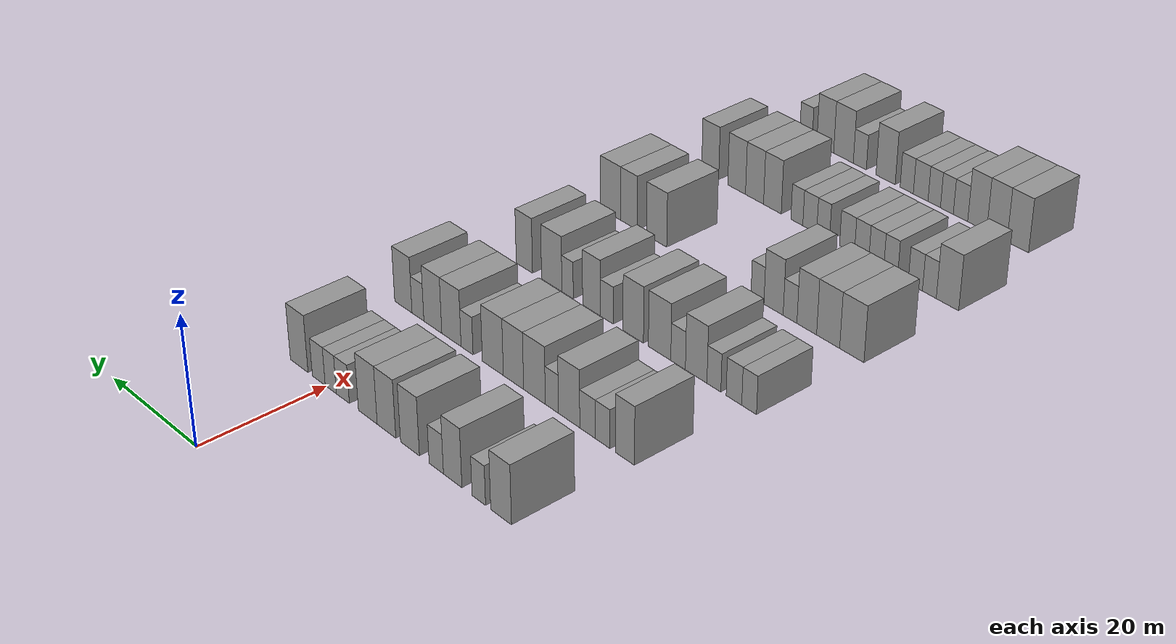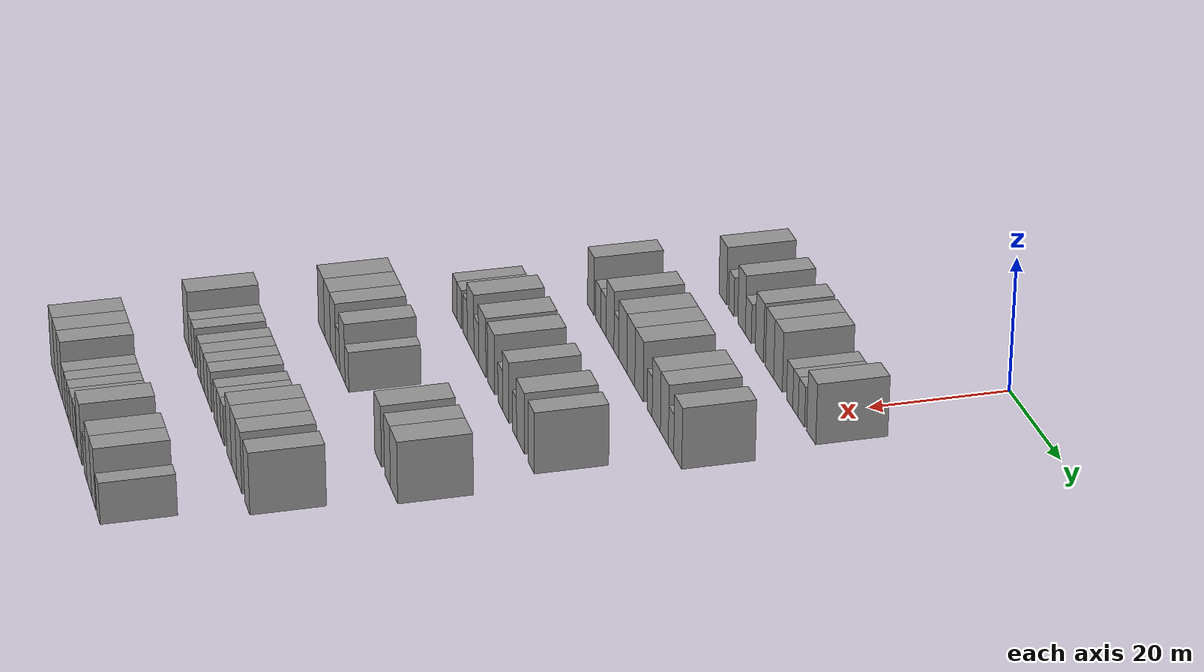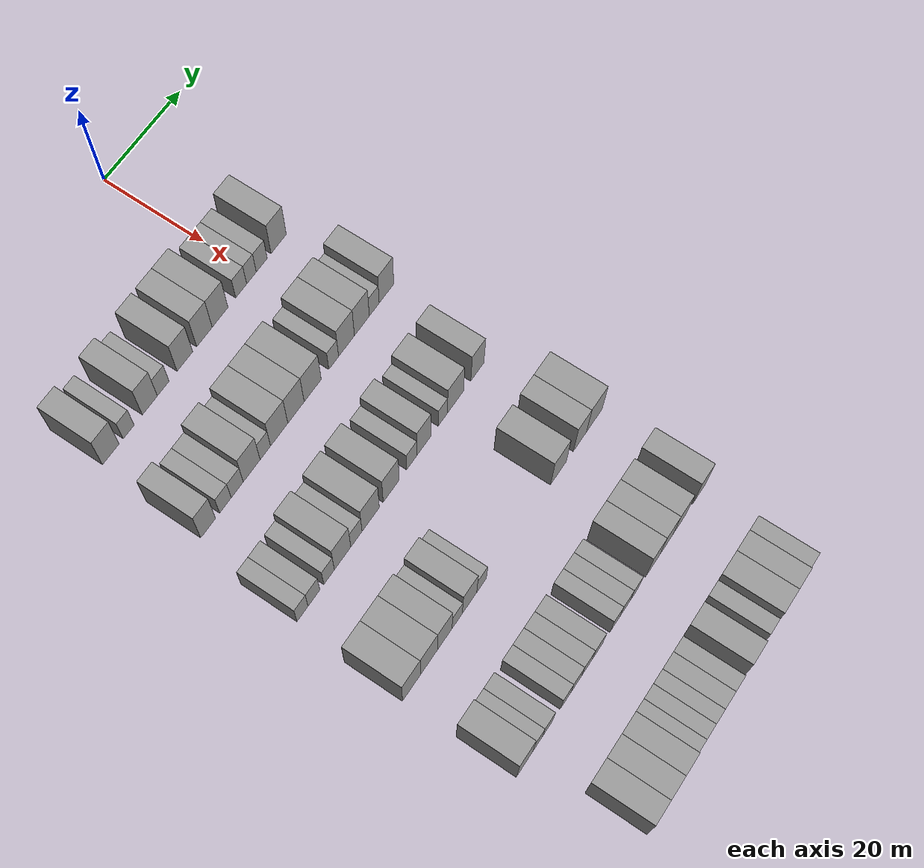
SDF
<sdf version="1.6">
 <world name="default">
  <model name="building_82">
   <static>1</static>
   <pose>25.0000 -36.3739 0 0.000000 0.000000 0.000000</pose>
   <link name="link">
    <pose>0 0 4.50 0 0 0</pose>
    <collision name="collision"><geometry><box><size>10.0000 3.9956 9.0000</size></box></geometry></collision>
    <visual name="visual">
     <cast_shadows>0</cast_shadows>
     <geometry><box><size>10.0000 3.9956 9.0000</size></box></geometry>
     <material>
      <script>
       <uri>model://grey_wall/materials/scripts</uri>
       <uri>model://grey_wall/materials/textures</uri>
       <name>vrc/grey_wall</name>
      </script>
     </material>
    </visual>
   </link>
  </model>
  <model name="building_83">
   <static>1</static>
   <pose>25.0000 -32.0469 0 0.000000 0.000000 0.000000</pose>
   <link name="link">
    <pose>0 0 3.00 0 0 0</pose>
    <collision name="collision"><geometry><box><size>10.0000 2.6585 6.0000</size></box></geometry></collision>
    <visual name="visual">
     <cast_shadows>0</cast_shadows>
     <geometry><box><size>10.0000 2.6585 6.0000</size></box></geometry>
     <material>
      <script>
       <uri>model://grey_wall/materials/scripts</uri>
       <uri>model://grey_wall/materials/textures</uri>
       <name>vrc/grey_wall</name>
      </script>
     </material>
    </visual>
   </link>
  </model>
  <model name="building_84">
   <static>1</static>
   <pose>25.0000 -26.8616 0 0.000000 0.000000 0.000000</pose>
   <link name="link">
    <pose>0 0 4.50 0 0 0</pose>
    <collision name="collision"><geometry><box><size>10.0000 3.7120 9.0000</size></box></geometry></collision>
    <visual name="visual">
     <cast_shadows>0</cast_shadows>
     <geometry><box><size>10.0000 3.7120 9.0000</size></box></geometry>
     <material>
      <script>
       <uri>model://grey_wall/materials/scripts</uri>
       <uri>model://grey_wall/materials/textures</uri>
       <name>vrc/grey_wall</name>
      </script>
     </material>
    </visual>
   </link>
  </model>
  <model name="building_85">
   <static>1</static>
   <pose>25.0000 -23.5448 0 0.000000 0.000000 0.000000</pose>
   <link name="link">
    <pose>0 0 3.00 0 0 0</pose>
    <collision name="collision"><geometry><box><size>10.0000 2.9215 6.0000</size></box></geometry></collision>
    <visual name="visual">
     <cast_shadows>0</cast_shadows>
     <geometry><box><size>10.0000 2.9215 6.0000</size></box></geometry>
     <material>
      <script>
       <uri>model://grey_wall/materials/scripts</uri>
       <uri>model://grey_wall/materials/textures</uri>
       <name>vrc/grey_wall</name>
      </script>
     </material>
    </visual>
   </link>
  </model>
  <model name="building_86">
   <static>1</static>
   <pose>25.0000 -18.1138 0 0.000000 0.000000 0.000000</pose>
   <link name="link">
    <pose>0 0 4.50 0 0 0</pose>
    <collision name="collision"><geometry><box><size>10.0000 3.9405 9.0000</size></box></geometry></collision>
    <visual name="visual">
     <cast_shadows>0</cast_shadows>
     <geometry><box><size>10.0000 3.9405 9.0000</size></box></geometry>
     <material>
      <script>
       <uri>model://grey_wall/materials/scripts</uri>
       <uri>model://grey_wall/materials/textures</uri>
       <name>vrc/grey_wall</name>
      </script>
     </material>
    </visual>
   </link>
  </model>
  <model name="building_87">
   <static>1</static>
   <pose>25.0000 -13.1599 0 0.000000 0.000000 0.000000</pose>
   <link name="link">
    <pose>0 0 4.50 0 0 0</pose>
    <collision name="collision"><geometry><box><size>10.0000 3.9674 9.0000</size></box></geometry></collision>
    <visual name="visual">
     <cast_shadows>0</cast_shadows>
     <geometry><box><size>10.0000 3.9674 9.0000</size></box></geometry>
     <material>
      <script>
       <uri>model://grey_wall/materials/scripts</uri>
       <uri>model://grey_wall/materials/textures</uri>
       <name>vrc/grey_wall</name>
      </script>
     </material>
    </visual>
   </link>
  </model>
  <model name="building_88">
   <static>1</static>
   <pose>25.0000 -9.1341 0 0.000000 0.000000 0.000000</pose>
   <link name="link">
    <pose>0 0 4.50 0 0 0</pose>
    <collision name="collision"><geometry><box><size>10.0000 4.0842 9.0000</size></box></geometry></collision>
    <visual name="visual">
     <cast_shadows>0</cast_shadows>
     <geometry><box><size>10.0000 4.0842 9.0000</size></box></geometry>
     <material>
      <script>
       <uri>model://grey_wall/materials/scripts</uri>
       <uri>model://grey_wall/materials/textures</uri>
       <name>vrc/grey_wall</name>
      </script>
     </material>
    </visual>
   </link>
  </model>
  <model name="building_89">
   <static>1</static>
   <pose>25.0000 -3.6507 0 0.000000 0.000000 0.000000</pose>
   <link name="link">
    <pose>0 0 3.00 0 0 0</pose>
    <collision name="collision"><geometry><box><size>10.0000 2.8826 6.0000</size></box></geometry></collision>
    <visual name="visual">
     <cast_shadows>0</cast_shadows>
     <geometry><box><size>10.0000 2.8826 6.0000</size></box></geometry>
     <material>
      <script>
       <uri>model://grey_wall/materials/scripts</uri>
       <uri>model://grey_wall/materials/textures</uri>
       <name>vrc/grey_wall</name>
      </script>
     </material>
    </visual>
   </link>
  </model>
  <model name="building_90">
   <static>1</static>
   <pose>25.0000 -0.9474 0 0.000000 0.000000 0.000000</pose>
   <link name="link">
    <pose>0 0 3.00 0 0 0</pose>
    <collision name="collision"><geometry><box><size>10.0000 2.5239 6.0000</size></box></geometry></collision>
    <visual name="visual">
     <cast_shadows>0</cast_shadows>
     <geometry><box><size>10.0000 2.5239 6.0000</size></box></geometry>
     <material>
      <script>
       <uri>model://grey_wall/materials/scripts</uri>
       <uri>model://grey_wall/materials/textures</uri>
       <name>vrc/grey_wall</name>
      </script>
     </material>
    </visual>
   </link>
  </model>
  <model name="building_91">
   <static>1</static>
   <pose>25.0000 1.7710 0 0.000000 0.000000 0.000000</pose>
   <link name="link">
    <pose>0 0 3.00 0 0 0</pose>
    <collision name="collision"><geometry><box><size>10.0000 2.9131 6.0000</size></box></geometry></collision>
    <visual name="visual">
     <cast_shadows>0</cast_shadows>
     <geometry><box><size>10.0000 2.9131 6.0000</size></box></geometry>
     <material>
      <script>
       <uri>model://grey_wall/materials/scripts</uri>
       <uri>model://grey_wall/materials/textures</uri>
       <name>vrc/grey_wall</name>
      </script>
     </material>
    </visual>
   </link>
  </model>
  <model name="building_92">
   <static>1</static>
   <pose>25.0000 6.2676 0 0.000000 0.000000 0.000000</pose>
   <link name="link">
    <pose>0 0 4.50 0 0 0</pose>
    <collision name="collision"><geometry><box><size>10.0000 4.0800 9.0000</size></box></geometry></collision>
    <visual name="visual">
     <cast_shadows>0</cast_shadows>
     <geometry><box><size>10.0000 4.0800 9.0000</size></box></geometry>
     <material>
      <script>
       <uri>model://grey_wall/materials/scripts</uri>
       <uri>model://grey_wall/materials/textures</uri>
       <name>vrc/grey_wall</name>
      </script>
     </material>
    </visual>
   </link>
  </model>
  <model name="building_244">
   <static>1</static>
   <pose>44.0000 -37.4966 0 0.000000 0.000000 0.000000</pose>
   <link name="link">
    <pose>0 0 4.50 0 0 0</pose>
    <collision name="collision"><geometry><box><size>10.0000 3.6124 9.0000</size></box></geometry></collision>
    <visual name="visual">
     <cast_shadows>0</cast_shadows>
     <geometry><box><size>10.0000 3.6124 9.0000</size></box></geometry>
     <material>
      <script>
       <uri>model://grey_wall/materials/scripts</uri>
       <uri>model://grey_wall/materials/textures</uri>
       <name>vrc/grey_wall</name>
      </script>
     </material>
    </visual>
   </link>
  </model>
  <model name="building_245">
   <static>1</static>
   <pose>44.0000 -33.2606 0 0.000000 0.000000 0.000000</pose>
   <link name="link">
    <pose>0 0 3.00 0 0 0</pose>
    <collision name="collision"><geometry><box><size>10.0000 2.8596 6.0000</size></box></geometry></collision>
    <visual name="visual">
     <cast_shadows>0</cast_shadows>
     <geometry><box><size>10.0000 2.8596 6.0000</size></box></geometry>
     <material>
      <script>
       <uri>model://grey_wall/materials/scripts</uri>
       <uri>model://grey_wall/materials/textures</uri>
       <name>vrc/grey_wall</name>
      </script>
     </material>
    </visual>
   </link>
  </model>
  <model name="building_246">
   <static>1</static>
   <pose>44.0000 -30.3310 0 0.000000 0.000000 0.000000</pose>
   <link name="link">
    <pose>0 0 3.00 0 0 0</pose>
    <collision name="collision"><geometry><box><size>10.0000 2.9995 6.0000</size></box></geometry></collision>
    <visual name="visual">
     <cast_shadows>0</cast_shadows>
     <geometry><box><size>10.0000 2.9995 6.0000</size></box></geometry>
     <material>
      <script>
       <uri>model://grey_wall/materials/scripts</uri>
       <uri>model://grey_wall/materials/textures</uri>
       <name>vrc/grey_wall</name>
      </script>
     </material>
    </visual>
   </link>
  </model>
  <model name="building_247">
   <static>1</static>
   <pose>44.0000 -26.7188 0 0.000000 0.000000 0.000000</pose>
   <link name="link">
    <pose>0 0 4.50 0 0 0</pose>
    <collision name="collision"><geometry><box><size>10.0000 4.2251 9.0000</size></box></geometry></collision>
    <visual name="visual">
     <cast_shadows>0</cast_shadows>
     <geometry><box><size>10.0000 4.2251 9.0000</size></box></geometry>
     <material>
      <script>
       <uri>model://grey_wall/materials/scripts</uri>
       <uri>model://grey_wall/materials/textures</uri>
       <name>vrc/grey_wall</name>
      </script>
     </material>
    </visual>
   </link>
  </model>
  <model name="building_248">
   <static>1</static>
   <pose>44.0000 -23.2904 0 0.000000 0.000000 0.000000</pose>
   <link name="link">
    <pose>0 0 3.00 0 0 0</pose>
    <collision name="collision"><geometry><box><size>10.0000 2.6316 6.0000</size></box></geometry></collision>
    <visual name="visual">
     <cast_shadows>0</cast_shadows>
     <geometry><box><size>10.0000 2.6316 6.0000</size></box></geometry>
     <material>
      <script>
       <uri>model://grey_wall/materials/scripts</uri>
       <uri>model://grey_wall/materials/textures</uri>
       <name>vrc/grey_wall</name>
      </script>
     </material>
    </visual>
   </link>
  </model>
  <model name="building_249">
   <static>1</static>
   <pose>44.0000 -19.7622 0 0.000000 0.000000 0.000000</pose>
   <link name="link">
    <pose>0 0 4.50 0 0 0</pose>
    <collision name="collision"><geometry><box><size>10.0000 4.4248 9.0000</size></box></geometry></collision>
    <visual name="visual">
     <cast_shadows>0</cast_shadows>
     <geometry><box><size>10.0000 4.4248 9.0000</size></box></geometry>
     <material>
      <script>
       <uri>model://grey_wall/materials/scripts</uri>
       <uri>model://grey_wall/materials/textures</uri>
       <name>vrc/grey_wall</name>
      </script>
     </material>
    </visual>
   </link>
  </model>
  <model name="building_250">
   <static>1</static>
   <pose>44.0000 -15.4418 0 0.000000 0.000000 0.000000</pose>
   <link name="link">
    <pose>0 0 4.50 0 0 0</pose>
    <collision name="collision"><geometry><box><size>10.0000 4.2159 9.0000</size></box></geometry></collision>
    <visual name="visual">
     <cast_shadows>0</cast_shadows>
     <geometry><box><size>10.0000 4.2159 9.0000</size></box></geometry>
     <material>
      <script>
       <uri>model://grey_wall/materials/scripts</uri>
       <uri>model://grey_wall/materials/textures</uri>
       <name>vrc/grey_wall</name>
      </script>
     </material>
    </visual>
   </link>
  </model>
  <model name="building_251">
   <static>1</static>
   <pose>44.0000 -11.1108 0 0.000000 0.000000 0.000000</pose>
   <link name="link">
    <pose>0 0 4.50 0 0 0</pose>
    <collision name="collision"><geometry><box><size>10.0000 4.4461 9.0000</size></box></geometry></collision>
    <visual name="visual">
     <cast_shadows>0</cast_shadows>
     <geometry><box><size>10.0000 4.4461 9.0000</size></box></geometry>
     <material>
      <script>
       <uri>model://grey_wall/materials/scripts</uri>
       <uri>model://grey_wall/materials/textures</uri>
       <name>vrc/grey_wall</name>
      </script>
     </material>
    </visual>
   </link>
  </model>
  <model name="building_252">
   <static>1</static>
   <pose>44.0000 -5.5896 0 0.000000 0.000000 0.000000</pose>
   <link name="link">
    <pose>0 0 3.00 0 0 0</pose>
    <collision name="collision"><geometry><box><size>10.0000 2.5964 6.0000</size></box></geometry></collision>
    <visual name="visual">
     <cast_shadows>0</cast_shadows>
     <geometry><box><size>10.0000 2.5964 6.0000</size></box></geometry>
     <material>
      <script>
       <uri>model://grey_wall/materials/scripts</uri>
       <uri>model://grey_wall/materials/textures</uri>
       <name>vrc/grey_wall</name>
      </script>
     </material>
    </visual>
   </link>
  </model>
  <model name="building_253">
   <static>1</static>
   <pose>44.0000 -2.1732 0 0.000000 0.000000 0.000000</pose>
   <link name="link">
    <pose>0 0 4.50 0 0 0</pose>
    <collision name="collision"><geometry><box><size>10.0000 4.2363 9.0000</size></box></geometry></collision>
    <visual name="visual">
     <cast_shadows>0</cast_shadows>
     <geometry><box><size>10.0000 4.2363 9.0000</size></box></geometry>
     <material>
      <script>
       <uri>model://grey_wall/materials/scripts</uri>
       <uri>model://grey_wall/materials/textures</uri>
       <name>vrc/grey_wall</name>
      </script>
     </material>
    </visual>
   </link>
  </model>
  <model name="building_254">
   <static>1</static>
   <pose>44.0000 1.9470 0 0.000000 0.000000 0.000000</pose>
   <link name="link">
    <pose>0 0 4.50 0 0 0</pose>
    <collision name="collision"><geometry><box><size>10.0000 4.0041 9.0000</size></box></geometry></collision>
    <visual name="visual">
     <cast_shadows>0</cast_shadows>
     <geometry><box><size>10.0000 4.0041 9.0000</size></box></geometry>
     <material>
      <script>
       <uri>model://grey_wall/materials/scripts</uri>
       <uri>model://grey_wall/materials/textures</uri>
       <name>vrc/grey_wall</name>
      </script>
     </material>
    </visual>
   </link>
  </model>
  <model name="building_255">
   <static>1</static>
   <pose>44.0000 5.2903 0 0.000000 0.000000 0.000000</pose>
   <link name="link">
    <pose>0 0 3.00 0 0 0</pose>
    <collision name="collision"><geometry><box><size>10.0000 2.6825 6.0000</size></box></geometry></collision>
    <visual name="visual">
     <cast_shadows>0</cast_shadows>
     <geometry><box><size>10.0000 2.6825 6.0000</size></box></geometry>
     <material>
      <script>
       <uri>model://grey_wall/materials/scripts</uri>
       <uri>model://grey_wall/materials/textures</uri>
       <name>vrc/grey_wall</name>
      </script>
     </material>
    </visual>
   </link>
  </model>
  <model name="building_256">
   <static>1</static>
   <pose>44.0000 8.6175 0 0.000000 0.000000 0.000000</pose>
   <link name="link">
    <pose>0 0 4.50 0 0 0</pose>
    <collision name="collision"><geometry><box><size>10.0000 3.9719 9.0000</size></box></geometry></collision>
    <visual name="visual">
     <cast_shadows>0</cast_shadows>
     <geometry><box><size>10.0000 3.9719 9.0000</size></box></geometry>
     <material>
      <script>
       <uri>model://grey_wall/materials/scripts</uri>
       <uri>model://grey_wall/materials/textures</uri>
       <name>vrc/grey_wall</name>
      </script>
     </material>
    </visual>
   </link>
  </model>
  <model name="building_426">
   <static>1</static>
   <pose>63.0000 -40.2476 0 0.000000 0.000000 0.000000</pose>
   <link name="link">
    <pose>0 0 3.00 0 0 0</pose>
    <collision name="collision"><geometry><box><size>10.0000 2.7305 6.0000</size></box></geometry></collision>
    <visual name="visual">
     <cast_shadows>0</cast_shadows>
     <geometry><box><size>10.0000 2.7305 6.0000</size></box></geometry>
     <material>
      <script>
       <uri>model://grey_wall/materials/scripts</uri>
       <uri>model://grey_wall/materials/textures</uri>
       <name>vrc/grey_wall</name>
      </script>
     </material>
    </visual>
   </link>
  </model>
  <model name="building_427">
   <static>1</static>
   <pose>63.0000 -37.4227 0 0.000000 0.000000 0.000000</pose>
   <link name="link">
    <pose>0 0 3.00 0 0 0</pose>
    <collision name="collision"><geometry><box><size>10.0000 2.9193 6.0000</size></box></geometry></collision>
    <visual name="visual">
     <cast_shadows>0</cast_shadows>
     <geometry><box><size>10.0000 2.9193 6.0000</size></box></geometry>
     <material>
      <script>
       <uri>model://grey_wall/materials/scripts</uri>
       <uri>model://grey_wall/materials/textures</uri>
       <name>vrc/grey_wall</name>
      </script>
     </material>
    </visual>
   </link>
  </model>
  <model name="building_428">
   <static>1</static>
   <pose>63.0000 -33.6394 0 0.000000 0.000000 0.000000</pose>
   <link name="link">
    <pose>0 0 3.00 0 0 0</pose>
    <collision name="collision"><geometry><box><size>10.0000 2.6472 6.0000</size></box></geometry></collision>
    <visual name="visual">
     <cast_shadows>0</cast_shadows>
     <geometry><box><size>10.0000 2.6472 6.0000</size></box></geometry>
     <material>
      <script>
       <uri>model://grey_wall/materials/scripts</uri>
       <uri>model://grey_wall/materials/textures</uri>
       <name>vrc/grey_wall</name>
      </script>
     </material>
    </visual>
   </link>
  </model>
  <model name="building_429">
   <static>1</static>
   <pose>63.0000 -30.2366 0 0.000000 0.000000 0.000000</pose>
   <link name="link">
    <pose>0 0 4.50 0 0 0</pose>
    <collision name="collision"><geometry><box><size>10.0000 4.1584 9.0000</size></box></geometry></collision>
    <visual name="visual">
     <cast_shadows>0</cast_shadows>
     <geometry><box><size>10.0000 4.1584 9.0000</size></box></geometry>
     <material>
      <script>
       <uri>model://grey_wall/materials/scripts</uri>
       <uri>model://grey_wall/materials/textures</uri>
       <name>vrc/grey_wall</name>
      </script>
     </material>
    </visual>
   </link>
  </model>
  <model name="building_430">
   <static>1</static>
   <pose>63.0000 -26.7255 0 0.000000 0.000000 0.000000</pose>
   <link name="link">
    <pose>0 0 3.00 0 0 0</pose>
    <collision name="collision"><geometry><box><size>10.0000 2.8638 6.0000</size></box></geometry></collision>
    <visual name="visual">
     <cast_shadows>0</cast_shadows>
     <geometry><box><size>10.0000 2.8638 6.0000</size></box></geometry>
     <material>
      <script>
       <uri>model://grey_wall/materials/scripts</uri>
       <uri>model://grey_wall/materials/textures</uri>
       <name>vrc/grey_wall</name>
      </script>
     </material>
    </visual>
   </link>
  </model>
  <model name="building_431">
   <static>1</static>
   <pose>63.0000 -23.0650 0 0.000000 0.000000 0.000000</pose>
   <link name="link">
    <pose>0 0 4.50 0 0 0</pose>
    <collision name="collision"><geometry><box><size>10.0000 4.4572 9.0000</size></box></geometry></collision>
    <visual name="visual">
     <cast_shadows>0</cast_shadows>
     <geometry><box><size>10.0000 4.4572 9.0000</size></box></geometry>
     <material>
      <script>
       <uri>model://grey_wall/materials/scripts</uri>
       <uri>model://grey_wall/materials/textures</uri>
       <name>vrc/grey_wall</name>
      </script>
     </material>
    </visual>
   </link>
  </model>
  <model name="building_432">
   <static>1</static>
   <pose>63.0000 -17.7571 0 0.000000 0.000000 0.000000</pose>
   <link name="link">
    <pose>0 0 4.50 0 0 0</pose>
    <collision name="collision"><geometry><box><size>10.0000 4.1584 9.0000</size></box></geometry></collision>
    <visual name="visual">
     <cast_shadows>0</cast_shadows>
     <geometry><box><size>10.0000 4.1584 9.0000</size></box></geometry>
     <material>
      <script>
       <uri>model://grey_wall/materials/scripts</uri>
       <uri>model://grey_wall/materials/textures</uri>
       <name>vrc/grey_wall</name>
      </script>
     </material>
    </visual>
   </link>
  </model>
  <model name="building_433">
   <static>1</static>
   <pose>63.0000 -12.3101 0 0.000000 0.000000 0.000000</pose>
   <link name="link">
    <pose>0 0 3.00 0 0 0</pose>
    <collision name="collision"><geometry><box><size>10.0000 2.7355 6.0000</size></box></geometry></collision>
    <visual name="visual">
     <cast_shadows>0</cast_shadows>
     <geometry><box><size>10.0000 2.7355 6.0000</size></box></geometry>
     <material>
      <script>
       <uri>model://grey_wall/materials/scripts</uri>
       <uri>model://grey_wall/materials/textures</uri>
       <name>vrc/grey_wall</name>
      </script>
     </material>
    </visual>
   </link>
  </model>
  <model name="building_434">
   <static>1</static>
   <pose>63.0000 -9.1037 0 0.000000 0.000000 0.000000</pose>
   <link name="link">
    <pose>0 0 4.50 0 0 0</pose>
    <collision name="collision"><geometry><box><size>10.0000 3.6774 9.0000</size></box></geometry></collision>
    <visual name="visual">
     <cast_shadows>0</cast_shadows>
     <geometry><box><size>10.0000 3.6774 9.0000</size></box></geometry>
     <material>
      <script>
       <uri>model://grey_wall/materials/scripts</uri>
       <uri>model://grey_wall/materials/textures</uri>
       <name>vrc/grey_wall</name>
      </script>
     </material>
    </visual>
   </link>
  </model>
  <model name="building_435">
   <static>1</static>
   <pose>63.0000 -4.0407 0 0.000000 0.000000 0.000000</pose>
   <link name="link">
    <pose>0 0 3.00 0 0 0</pose>
    <collision name="collision"><geometry><box><size>10.0000 2.4487 6.0000</size></box></geometry></collision>
    <visual name="visual">
     <cast_shadows>0</cast_shadows>
     <geometry><box><size>10.0000 2.4487 6.0000</size></box></geometry>
     <material>
      <script>
       <uri>model://grey_wall/materials/scripts</uri>
       <uri>model://grey_wall/materials/textures</uri>
       <name>vrc/grey_wall</name>
      </script>
     </material>
    </visual>
   </link>
  </model>
  <model name="building_436">
   <static>1</static>
   <pose>63.0000 -0.6007 0 0.000000 0.000000 0.000000</pose>
   <link name="link">
    <pose>0 0 4.50 0 0 0</pose>
    <collision name="collision"><geometry><box><size>10.0000 4.4313 9.0000</size></box></geometry></collision>
    <visual name="visual">
     <cast_shadows>0</cast_shadows>
     <geometry><box><size>10.0000 4.4313 9.0000</size></box></geometry>
     <material>
      <script>
       <uri>model://grey_wall/materials/scripts</uri>
       <uri>model://grey_wall/materials/textures</uri>
       <name>vrc/grey_wall</name>
      </script>
     </material>
    </visual>
   </link>
  </model>
  <model name="building_437">
   <static>1</static>
   <pose>63.0000 5.4301 0 0.000000 0.000000 0.000000</pose>
   <link name="link">
    <pose>0 0 4.50 0 0 0</pose>
    <collision name="collision"><geometry><box><size>10.0000 3.6302 9.0000</size></box></geometry></collision>
    <visual name="visual">
     <cast_shadows>0</cast_shadows>
     <geometry><box><size>10.0000 3.6302 9.0000</size></box></geometry>
     <material>
      <script>
       <uri>model://grey_wall/materials/scripts</uri>
       <uri>model://grey_wall/materials/textures</uri>
       <name>vrc/grey_wall</name>
      </script>
     </material>
    </visual>
   </link>
  </model>
  <model name="building_582">
   <static>1</static>
   <pose>82.0000 -40.3728 0 0.000000 0.000000 0.000000</pose>
   <link name="link">
    <pose>0 0 4.50 0 0 0</pose>
    <collision name="collision"><geometry><box><size>10.0000 4.4752 9.0000</size></box></geometry></collision>
    <visual name="visual">
     <cast_shadows>0</cast_shadows>
     <geometry><box><size>10.0000 4.4752 9.0000</size></box></geometry>
     <material>
      <script>
       <uri>model://grey_wall/materials/scripts</uri>
       <uri>model://grey_wall/materials/textures</uri>
       <name>vrc/grey_wall</name>
      </script>
     </material>
    </visual>
   </link>
  </model>
  <model name="building_583">
   <static>1</static>
   <pose>82.0000 -35.9753 0 0.000000 0.000000 0.000000</pose>
   <link name="link">
    <pose>0 0 4.50 0 0 0</pose>
    <collision name="collision"><geometry><box><size>10.0000 4.3197 9.0000</size></box></geometry></collision>
    <visual name="visual">
     <cast_shadows>0</cast_shadows>
     <geometry><box><size>10.0000 4.3197 9.0000</size></box></geometry>
     <material>
      <script>
       <uri>model://grey_wall/materials/scripts</uri>
       <uri>model://grey_wall/materials/textures</uri>
       <name>vrc/grey_wall</name>
      </script>
     </material>
    </visual>
   </link>
  </model>
  <model name="building_584">
   <static>1</static>
   <pose>82.0000 -31.9392 0 0.000000 0.000000 0.000000</pose>
   <link name="link">
    <pose>0 0 4.50 0 0 0</pose>
    <collision name="collision"><geometry><box><size>10.0000 3.7526 9.0000</size></box></geometry></collision>
    <visual name="visual">
     <cast_shadows>0</cast_shadows>
     <geometry><box><size>10.0000 3.7526 9.0000</size></box></geometry>
     <material>
      <script>
       <uri>model://grey_wall/materials/scripts</uri>
       <uri>model://grey_wall/materials/textures</uri>
       <name>vrc/grey_wall</name>
      </script>
     </material>
    </visual>
   </link>
  </model>
  <model name="building_585">
   <static>1</static>
   <pose>82.0000 -28.7332 0 0.000000 0.000000 0.000000</pose>
   <link name="link">
    <pose>0 0 3.00 0 0 0</pose>
    <collision name="collision"><geometry><box><size>10.0000 2.6593 6.0000</size></box></geometry></collision>
    <visual name="visual">
     <cast_shadows>0</cast_shadows>
     <geometry><box><size>10.0000 2.6593 6.0000</size></box></geometry>
     <material>
      <script>
       <uri>model://grey_wall/materials/scripts</uri>
       <uri>model://grey_wall/materials/textures</uri>
       <name>vrc/grey_wall</name>
      </script>
     </material>
    </visual>
   </link>
  </model>
  <model name="building_586">
   <static>1</static>
   <pose>82.0000 -25.5226 0 0.000000 0.000000 0.000000</pose>
   <link name="link">
    <pose>0 0 4.50 0 0 0</pose>
    <collision name="collision"><geometry><box><size>10.0000 3.7619 9.0000</size></box></geometry></collision>
    <visual name="visual">
     <cast_shadows>0</cast_shadows>
     <geometry><box><size>10.0000 3.7619 9.0000</size></box></geometry>
     <material>
      <script>
       <uri>model://grey_wall/materials/scripts</uri>
       <uri>model://grey_wall/materials/textures</uri>
       <name>vrc/grey_wall</name>
      </script>
     </material>
    </visual>
   </link>
  </model>
  <model name="building_587">
   <static>1</static>
   <pose>82.0000 -22.3545 0 0.000000 0.000000 0.000000</pose>
   <link name="link">
    <pose>0 0 3.00 0 0 0</pose>
    <collision name="collision"><geometry><box><size>10.0000 2.5743 6.0000</size></box></geometry></collision>
    <visual name="visual">
     <cast_shadows>0</cast_shadows>
     <geometry><box><size>10.0000 2.5743 6.0000</size></box></geometry>
     <material>
      <script>
       <uri>model://grey_wall/materials/scripts</uri>
       <uri>model://grey_wall/materials/textures</uri>
       <name>vrc/grey_wall</name>
      </script>
     </material>
    </visual>
   </link>
  </model>
  <model name="building_588">
   <static>1</static>
   <pose>82.0000 -1.5267 0 0.000000 0.000000 0.000000</pose>
   <link name="link">
    <pose>0 0 4.50 0 0 0</pose>
    <collision name="collision"><geometry><box><size>10.0000 4.3604 9.0000</size></box></geometry></collision>
    <visual name="visual">
     <cast_shadows>0</cast_shadows>
     <geometry><box><size>10.0000 4.3604 9.0000</size></box></geometry>
     <material>
      <script>
       <uri>model://grey_wall/materials/scripts</uri>
       <uri>model://grey_wall/materials/textures</uri>
       <name>vrc/grey_wall</name>
      </script>
     </material>
    </visual>
   </link>
  </model>
  <model name="building_589">
   <static>1</static>
   <pose>82.0000 4.5028 0 0.000000 0.000000 0.000000</pose>
   <link name="link">
    <pose>0 0 4.50 0 0 0</pose>
    <collision name="collision"><geometry><box><size>10.0000 3.6985 9.0000</size></box></geometry></collision>
    <visual name="visual">
     <cast_shadows>0</cast_shadows>
     <geometry><box><size>10.0000 3.6985 9.0000</size></box></geometry>
     <material>
      <script>
       <uri>model://grey_wall/materials/scripts</uri>
       <uri>model://grey_wall/materials/textures</uri>
       <name>vrc/grey_wall</name>
      </script>
     </material>
    </visual>
   </link>
  </model>
  <model name="building_590">
   <static>1</static>
   <pose>82.0000 8.5935 0 0.000000 0.000000 0.000000</pose>
   <link name="link">
    <pose>0 0 4.50 0 0 0</pose>
    <collision name="collision"><geometry><box><size>10.0000 4.4828 9.0000</size></box></geometry></collision>
    <visual name="visual">
     <cast_shadows>0</cast_shadows>
     <geometry><box><size>10.0000 4.4828 9.0000</size></box></geometry>
     <material>
      <script>
       <uri>model://grey_wall/materials/scripts</uri>
       <uri>model://grey_wall/materials/textures</uri>
       <name>vrc/grey_wall</name>
      </script>
     </material>
    </visual>
   </link>
  </model>
  <model name="building_737">
   <static>1</static>
   <pose>101.0000 -40.4781 0 0.000000 0.000000 0.000000</pose>
   <link name="link">
    <pose>0 0 4.50 0 0 0</pose>
    <collision name="collision"><geometry><box><size>10.0000 4.1135 9.0000</size></box></geometry></collision>
    <visual name="visual">
     <cast_shadows>0</cast_shadows>
     <geometry><box><size>10.0000 4.1135 9.0000</size></box></geometry>
     <material>
      <script>
       <uri>model://grey_wall/materials/scripts</uri>
       <uri>model://grey_wall/materials/textures</uri>
       <name>vrc/grey_wall</name>
      </script>
     </material>
    </visual>
   </link>
  </model>
  <model name="building_738">
   <static>1</static>
   <pose>101.0000 -37.1306 0 0.000000 0.000000 0.000000</pose>
   <link name="link">
    <pose>0 0 3.00 0 0 0</pose>
    <collision name="collision"><geometry><box><size>10.0000 2.5815 6.0000</size></box></geometry></collision>
    <visual name="visual">
     <cast_shadows>0</cast_shadows>
     <geometry><box><size>10.0000 2.5815 6.0000</size></box></geometry>
     <material>
      <script>
       <uri>model://grey_wall/materials/scripts</uri>
       <uri>model://grey_wall/materials/textures</uri>
       <name>vrc/grey_wall</name>
      </script>
     </material>
    </visual>
   </link>
  </model>
  <model name="building_739">
   <static>1</static>
   <pose>101.0000 -34.4963 0 0.000000 0.000000 0.000000</pose>
   <link name="link">
    <pose>0 0 3.00 0 0 0</pose>
    <collision name="collision"><geometry><box><size>10.0000 2.6871 6.0000</size></box></geometry></collision>
    <visual name="visual">
     <cast_shadows>0</cast_shadows>
     <geometry><box><size>10.0000 2.6871 6.0000</size></box></geometry>
     <material>
      <script>
       <uri>model://grey_wall/materials/scripts</uri>
       <uri>model://grey_wall/materials/textures</uri>
       <name>vrc/grey_wall</name>
      </script>
     </material>
    </visual>
   </link>
  </model>
  <model name="building_740">
   <static>1</static>
   <pose>101.0000 -29.8143 0 0.000000 0.000000 0.000000</pose>
   <link name="link">
    <pose>0 0 3.00 0 0 0</pose>
    <collision name="collision"><geometry><box><size>10.0000 2.6769 6.0000</size></box></geometry></collision>
    <visual name="visual">
     <cast_shadows>0</cast_shadows>
     <geometry><box><size>10.0000 2.6769 6.0000</size></box></geometry>
     <material>
      <script>
       <uri>model://grey_wall/materials/scripts</uri>
       <uri>model://grey_wall/materials/textures</uri>
       <name>vrc/grey_wall</name>
      </script>
     </material>
    </visual>
   </link>
  </model>
  <model name="building_741">
   <static>1</static>
   <pose>101.0000 -27.0326 0 0.000000 0.000000 0.000000</pose>
   <link name="link">
    <pose>0 0 3.00 0 0 0</pose>
    <collision name="collision"><geometry><box><size>10.0000 2.8863 6.0000</size></box></geometry></collision>
    <visual name="visual">
     <cast_shadows>0</cast_shadows>
     <geometry><box><size>10.0000 2.8863 6.0000</size></box></geometry>
     <material>
      <script>
       <uri>model://grey_wall/materials/scripts</uri>
       <uri>model://grey_wall/materials/textures</uri>
       <name>vrc/grey_wall</name>
      </script>
     </material>
    </visual>
   </link>
  </model>
  <model name="building_742">
   <static>1</static>
   <pose>101.0000 -24.1850 0 0.000000 0.000000 0.000000</pose>
   <link name="link">
    <pose>0 0 3.00 0 0 0</pose>
    <collision name="collision"><geometry><box><size>10.0000 2.8089 6.0000</size></box></geometry></collision>
    <visual name="visual">
     <cast_shadows>0</cast_shadows>
     <geometry><box><size>10.0000 2.8089 6.0000</size></box></geometry>
     <material>
      <script>
       <uri>model://grey_wall/materials/scripts</uri>
       <uri>model://grey_wall/materials/textures</uri>
       <name>vrc/grey_wall</name>
      </script>
     </material>
    </visual>
   </link>
  </model>
  <model name="building_743">
   <static>1</static>
   <pose>101.0000 -21.3042 0 0.000000 0.000000 0.000000</pose>
   <link name="link">
    <pose>0 0 3.00 0 0 0</pose>
    <collision name="collision"><geometry><box><size>10.0000 2.9528 6.0000</size></box></geometry></collision>
    <visual name="visual">
     <cast_shadows>0</cast_shadows>
     <geometry><box><size>10.0000 2.9528 6.0000</size></box></geometry>
     <material>
      <script>
       <uri>model://grey_wall/materials/scripts</uri>
       <uri>model://grey_wall/materials/textures</uri>
       <name>vrc/grey_wall</name>
      </script>
     </material>
    </visual>
   </link>
  </model>
  <model name="building_744">
   <static>1</static>
   <pose>101.0000 -16.5339 0 0.000000 0.000000 0.000000</pose>
   <link name="link">
    <pose>0 0 3.00 0 0 0</pose>
    <collision name="collision"><geometry><box><size>10.0000 2.5878 6.0000</size></box></geometry></collision>
    <visual name="visual">
     <cast_shadows>0</cast_shadows>
     <geometry><box><size>10.0000 2.5878 6.0000</size></box></geometry>
     <material>
      <script>
       <uri>model://grey_wall/materials/scripts</uri>
       <uri>model://grey_wall/materials/textures</uri>
       <name>vrc/grey_wall</name>
      </script>
     </material>
    </visual>
   </link>
  </model>
  <model name="building_745">
   <static>1</static>
   <pose>101.0000 -13.8236 0 0.000000 0.000000 0.000000</pose>
   <link name="link">
    <pose>0 0 3.00 0 0 0</pose>
    <collision name="collision"><geometry><box><size>10.0000 2.8328 6.0000</size></box></geometry></collision>
    <visual name="visual">
     <cast_shadows>0</cast_shadows>
     <geometry><box><size>10.0000 2.8328 6.0000</size></box></geometry>
     <material>
      <script>
       <uri>model://grey_wall/materials/scripts</uri>
       <uri>model://grey_wall/materials/textures</uri>
       <name>vrc/grey_wall</name>
      </script>
     </material>
    </visual>
   </link>
  </model>
  <model name="building_746">
   <static>1</static>
   <pose>101.0000 -11.1784 0 0.000000 0.000000 0.000000</pose>
   <link name="link">
    <pose>0 0 3.00 0 0 0</pose>
    <collision name="collision"><geometry><box><size>10.0000 2.4577 6.0000</size></box></geometry></collision>
    <visual name="visual">
     <cast_shadows>0</cast_shadows>
     <geometry><box><size>10.0000 2.4577 6.0000</size></box></geometry>
     <material>
      <script>
       <uri>model://grey_wall/materials/scripts</uri>
       <uri>model://grey_wall/materials/textures</uri>
       <name>vrc/grey_wall</name>
      </script>
     </material>
    </visual>
   </link>
  </model>
  <model name="building_747">
   <static>1</static>
   <pose>101.0000 -6.0897 0 0.000000 0.000000 0.000000</pose>
   <link name="link">
    <pose>0 0 4.50 0 0 0</pose>
    <collision name="collision"><geometry><box><size>10.0000 3.7197 9.0000</size></box></geometry></collision>
    <visual name="visual">
     <cast_shadows>0</cast_shadows>
     <geometry><box><size>10.0000 3.7197 9.0000</size></box></geometry>
     <material>
      <script>
       <uri>model://grey_wall/materials/scripts</uri>
       <uri>model://grey_wall/materials/textures</uri>
       <name>vrc/grey_wall</name>
      </script>
     </material>
    </visual>
   </link>
  </model>
  <model name="building_748">
   <static>1</static>
   <pose>101.0000 -2.3085 0 0.000000 0.000000 0.000000</pose>
   <link name="link">
    <pose>0 0 4.50 0 0 0</pose>
    <collision name="collision"><geometry><box><size>10.0000 3.8426 9.0000</size></box></geometry></collision>
    <visual name="visual">
     <cast_shadows>0</cast_shadows>
     <geometry><box><size>10.0000 3.8426 9.0000</size></box></geometry>
     <material>
      <script>
       <uri>model://grey_wall/materials/scripts</uri>
       <uri>model://grey_wall/materials/textures</uri>
       <name>vrc/grey_wall</name>
      </script>
     </material>
    </visual>
   </link>
  </model>
  <model name="building_749">
   <static>1</static>
   <pose>101.0000 1.5240 0 0.000000 0.000000 0.000000</pose>
   <link name="link">
    <pose>0 0 4.50 0 0 0</pose>
    <collision name="collision"><geometry><box><size>10.0000 3.8225 9.0000</size></box></geometry></collision>
    <visual name="visual">
     <cast_shadows>0</cast_shadows>
     <geometry><box><size>10.0000 3.8225 9.0000</size></box></geometry>
     <material>
      <script>
       <uri>model://grey_wall/materials/scripts</uri>
       <uri>model://grey_wall/materials/textures</uri>
       <name>vrc/grey_wall</name>
      </script>
     </material>
    </visual>
   </link>
  </model>
  <model name="building_750">
   <static>1</static>
   <pose>101.0000 7.3106 0 0.000000 0.000000 0.000000</pose>
   <link name="link">
    <pose>0 0 4.50 0 0 0</pose>
    <collision name="collision"><geometry><box><size>10.0000 3.7507 9.0000</size></box></geometry></collision>
    <visual name="visual">
     <cast_shadows>0</cast_shadows>
     <geometry><box><size>10.0000 3.7507 9.0000</size></box></geometry>
     <material>
      <script>
       <uri>model://grey_wall/materials/scripts</uri>
       <uri>model://grey_wall/materials/textures</uri>
       <name>vrc/grey_wall</name>
      </script>
     </material>
    </visual>
   </link>
  </model>
  <model name="building_911">
   <static>1</static>
   <pose>120.0000 -37.0280 0 0.000000 0.000000 0.000000</pose>
   <link name="link">
    <pose>0 0 4.50 0 0 0</pose>
    <collision name="collision"><geometry><box><size>10.0000 4.0116 9.0000</size></box></geometry></collision>
    <visual name="visual">
     <cast_shadows>0</cast_shadows>
     <geometry><box><size>10.0000 4.0116 9.0000</size></box></geometry>
     <material>
      <script>
       <uri>model://grey_wall/materials/scripts</uri>
       <uri>model://grey_wall/materials/textures</uri>
       <name>vrc/grey_wall</name>
      </script>
     </material>
    </visual>
   </link>
  </model>
  <model name="building_912">
   <static>1</static>
   <pose>120.0000 -33.0991 0 0.000000 0.000000 0.000000</pose>
   <link name="link">
    <pose>0 0 4.50 0 0 0</pose>
    <collision name="collision"><geometry><box><size>10.0000 3.8462 9.0000</size></box></geometry></collision>
    <visual name="visual">
     <cast_shadows>0</cast_shadows>
     <geometry><box><size>10.0000 3.8462 9.0000</size></box></geometry>
     <material>
      <script>
       <uri>model://grey_wall/materials/scripts</uri>
       <uri>model://grey_wall/materials/textures</uri>
       <name>vrc/grey_wall</name>
      </script>
     </material>
    </visual>
   </link>
  </model>
  <model name="building_913">
   <static>1</static>
   <pose>120.0000 -29.3523 0 0.000000 0.000000 0.000000</pose>
   <link name="link">
    <pose>0 0 4.50 0 0 0</pose>
    <collision name="collision"><geometry><box><size>10.0000 3.6475 9.0000</size></box></geometry></collision>
    <visual name="visual">
     <cast_shadows>0</cast_shadows>
     <geometry><box><size>10.0000 3.6475 9.0000</size></box></geometry>
     <material>
      <script>
       <uri>model://grey_wall/materials/scripts</uri>
       <uri>model://grey_wall/materials/textures</uri>
       <name>vrc/grey_wall</name>
      </script>
     </material>
    </visual>
   </link>
  </model>
  <model name="building_914">
   <static>1</static>
   <pose>120.0000 -26.1309 0 0.000000 0.000000 0.000000</pose>
   <link name="link">
    <pose>0 0 3.00 0 0 0</pose>
    <collision name="collision"><geometry><box><size>10.0000 2.7954 6.0000</size></box></geometry></collision>
    <visual name="visual">
     <cast_shadows>0</cast_shadows>
     <geometry><box><size>10.0000 2.7954 6.0000</size></box></geometry>
     <material>
      <script>
       <uri>model://grey_wall/materials/scripts</uri>
       <uri>model://grey_wall/materials/textures</uri>
       <name>vrc/grey_wall</name>
      </script>
     </material>
    </visual>
   </link>
  </model>
  <model name="building_915">
   <static>1</static>
   <pose>120.0000 -23.4720 0 0.000000 0.000000 0.000000</pose>
   <link name="link">
    <pose>0 0 3.00 0 0 0</pose>
    <collision name="collision"><geometry><box><size>10.0000 2.5223 6.0000</size></box></geometry></collision>
    <visual name="visual">
     <cast_shadows>0</cast_shadows>
     <geometry><box><size>10.0000 2.5223 6.0000</size></box></geometry>
     <material>
      <script>
       <uri>model://grey_wall/materials/scripts</uri>
       <uri>model://grey_wall/materials/textures</uri>
       <name>vrc/grey_wall</name>
      </script>
     </material>
    </visual>
   </link>
  </model>
  <model name="building_916">
   <static>1</static>
   <pose>120.0000 -20.9793 0 0.000000 0.000000 0.000000</pose>
   <link name="link">
    <pose>0 0 3.00 0 0 0</pose>
    <collision name="collision"><geometry><box><size>10.0000 2.4632 6.0000</size></box></geometry></collision>
    <visual name="visual">
     <cast_shadows>0</cast_shadows>
     <geometry><box><size>10.0000 2.4632 6.0000</size></box></geometry>
     <material>
      <script>
       <uri>model://grey_wall/materials/scripts</uri>
       <uri>model://grey_wall/materials/textures</uri>
       <name>vrc/grey_wall</name>
      </script>
     </material>
    </visual>
   </link>
  </model>
  <model name="building_917">
   <static>1</static>
   <pose>120.0000 -18.2808 0 0.000000 0.000000 0.000000</pose>
   <link name="link">
    <pose>0 0 3.00 0 0 0</pose>
    <collision name="collision"><geometry><box><size>10.0000 2.9337 6.0000</size></box></geometry></collision>
    <visual name="visual">
     <cast_shadows>0</cast_shadows>
     <geometry><box><size>10.0000 2.9337 6.0000</size></box></geometry>
     <material>
      <script>
       <uri>model://grey_wall/materials/scripts</uri>
       <uri>model://grey_wall/materials/textures</uri>
       <name>vrc/grey_wall</name>
      </script>
     </material>
    </visual>
   </link>
  </model>
  <model name="building_918">
   <static>1</static>
   <pose>120.0000 -15.4788 0 0.000000 0.000000 0.000000</pose>
   <link name="link">
    <pose>0 0 3.00 0 0 0</pose>
    <collision name="collision"><geometry><box><size>10.0000 2.6703 6.0000</size></box></geometry></collision>
    <visual name="visual">
     <cast_shadows>0</cast_shadows>
     <geometry><box><size>10.0000 2.6703 6.0000</size></box></geometry>
     <material>
      <script>
       <uri>model://grey_wall/materials/scripts</uri>
       <uri>model://grey_wall/materials/textures</uri>
       <name>vrc/grey_wall</name>
      </script>
     </material>
    </visual>
   </link>
  </model>
  <model name="building_919">
   <static>1</static>
   <pose>120.0000 -11.1665 0 0.000000 0.000000 0.000000</pose>
   <link name="link">
    <pose>0 0 4.50 0 0 0</pose>
    <collision name="collision"><geometry><box><size>10.0000 3.9543 9.0000</size></box></geometry></collision>
    <visual name="visual">
     <cast_shadows>0</cast_shadows>
     <geometry><box><size>10.0000 3.9543 9.0000</size></box></geometry>
     <material>
      <script>
       <uri>model://grey_wall/materials/scripts</uri>
       <uri>model://grey_wall/materials/textures</uri>
       <name>vrc/grey_wall</name>
      </script>
     </material>
    </visual>
   </link>
  </model>
  <model name="building_920">
   <static>1</static>
   <pose>120.0000 -5.8231 0 0.000000 0.000000 0.000000</pose>
   <link name="link">
    <pose>0 0 3.00 0 0 0</pose>
    <collision name="collision"><geometry><box><size>10.0000 2.7325 6.0000</size></box></geometry></collision>
    <visual name="visual">
     <cast_shadows>0</cast_shadows>
     <geometry><box><size>10.0000 2.7325 6.0000</size></box></geometry>
     <material>
      <script>
       <uri>model://grey_wall/materials/scripts</uri>
       <uri>model://grey_wall/materials/textures</uri>
       <name>vrc/grey_wall</name>
      </script>
     </material>
    </visual>
   </link>
  </model>
  <model name="building_921">
   <static>1</static>
   <pose>120.0000 -2.3714 0 0.000000 0.000000 0.000000</pose>
   <link name="link">
    <pose>0 0 4.50 0 0 0</pose>
    <collision name="collision"><geometry><box><size>10.0000 4.1710 9.0000</size></box></geometry></collision>
    <visual name="visual">
     <cast_shadows>0</cast_shadows>
     <geometry><box><size>10.0000 4.1710 9.0000</size></box></geometry>
     <material>
      <script>
       <uri>model://grey_wall/materials/scripts</uri>
       <uri>model://grey_wall/materials/textures</uri>
       <name>vrc/grey_wall</name>
      </script>
     </material>
    </visual>
   </link>
  </model>
  <model name="building_922">
   <static>1</static>
   <pose>120.0000 1.5289 0 0.000000 0.000000 0.000000</pose>
   <link name="link">
    <pose>0 0 4.50 0 0 0</pose>
    <collision name="collision"><geometry><box><size>10.0000 3.6297 9.0000</size></box></geometry></collision>
    <visual name="visual">
     <cast_shadows>0</cast_shadows>
     <geometry><box><size>10.0000 3.6297 9.0000</size></box></geometry>
     <material>
      <script>
       <uri>model://grey_wall/materials/scripts</uri>
       <uri>model://grey_wall/materials/textures</uri>
       <name>vrc/grey_wall</name>
      </script>
     </material>
    </visual>
   </link>
  </model>
  <model name="building_923">
   <static>1</static>
   <pose>120.0000 5.7057 0 0.000000 0.000000 0.000000</pose>
   <link name="link">
    <pose>0 0 3.00 0 0 0</pose>
    <collision name="collision"><geometry><box><size>10.0000 2.7237 6.0000</size></box></geometry></collision>
    <visual name="visual">
     <cast_shadows>0</cast_shadows>
     <geometry><box><size>10.0000 2.7237 6.0000</size></box></geometry>
     <material>
      <script>
       <uri>model://grey_wall/materials/scripts</uri>
       <uri>model://grey_wall/materials/textures</uri>
       <name>vrc/grey_wall</name>
      </script>
     </material>
    </visual>
   </link>
  </model>
 </world>
</sdf>
